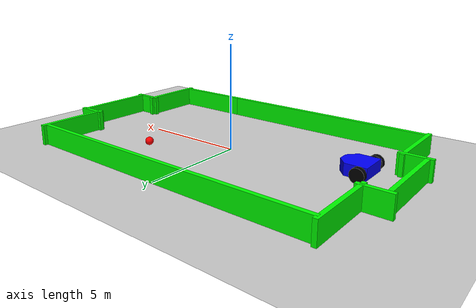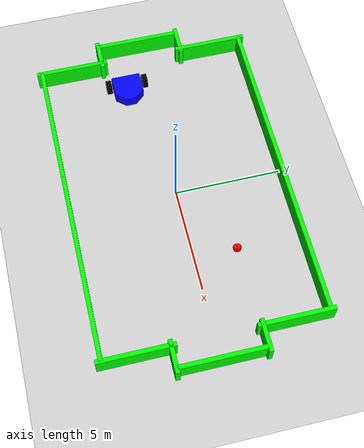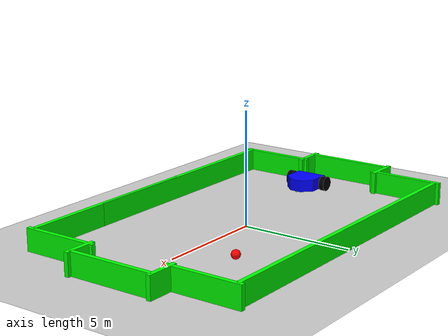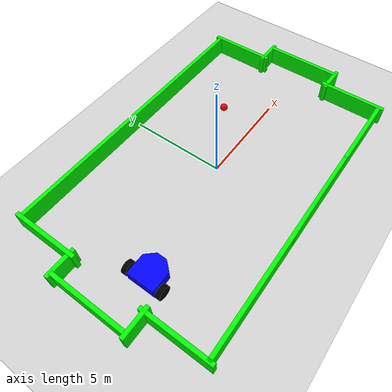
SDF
<sdf version='1.10'>
  <world name='car_world'>
    <physics name='1ms' type='ode'>
      <max_step_size>0.001</max_step_size>
      <real_time_factor>1</real_time_factor>
      <real_time_update_rate>1000</real_time_update_rate>
    </physics>
    <plugin name='gz::sim::systems::Sensors' filename='gz-sim-sensors-system'>
      <render_engine>ogre2</render_engine>
    </plugin>
    <plugin name='gz::sim::systems::Physics' filename='gz-sim-physics-system'/>
    <plugin name='gz::sim::systems::UserCommands' filename='gz-sim-user-commands-system'/>
    <plugin name='gz::sim::systems::SceneBroadcaster' filename='gz-sim-scene-broadcaster-system'/>
    <plugin name='gz::sim::systems::Imu' filename='gz-sim-imu-system'/>
    <gravity>0 0 -9.8000000000000007</gravity>
    <magnetic_field>5.5644999999999998e-06 2.2875799999999999e-05 -4.2388400000000002e-05</magnetic_field>
    <atmosphere type='adiabatic'/>
    <scene>
      <ambient>0.400000006 0.400000006 0.400000006 1</ambient>
      <background>0.699999988 0.699999988 0.699999988 1</background>
      <shadows>true</shadows>
    </scene>
    <model name='ground_plane'>
      <static>true</static>
      <link name='link'>
        <collision name='collision'>
          <geometry>
            <plane>
              <normal>0 0 1</normal>
              <size>100 100</size>
            </plane>
          </geometry>
          <surface>
            <friction>
              <ode/>
            </friction>
            <bounce/>
            <contact/>
          </surface>
        </collision>
        <visual name='visual'>
          <geometry>
            <plane>
              <normal>0 0 1</normal>
              <size>100 100</size>
            </plane>
          </geometry>
          <material>
            <ambient>0.800000012 0.800000012 0.800000012 1</ambient>
            <diffuse>0.800000012 0.800000012 0.800000012 1</diffuse>
            <specular>0.800000012 0.800000012 0.800000012 1</specular>
          </material>
        </visual>
        <pose>0 0 0 0 0 0</pose>
        <inertial>
          <pose>0 0 0 0 0 0</pose>
          <mass>1</mass>
          <inertia>
            <ixx>1</ixx>
            <ixy>0</ixy>
            <ixz>0</ixz>
            <iyy>1</iyy>
            <iyz>0</iyz>
            <izz>1</izz>
          </inertia>
        </inertial>
        <enable_wind>false</enable_wind>
      </link>
      <pose>0 0 0 0 0 0</pose>
      <self_collide>false</self_collide>
    </model>
    <model name='top_view_camera'>
      <static>true</static>
      <pose>0 0 8 3.1415926535897931 1.5707926536057681 3.1415926535897931</pose>
      <link name='camera_link'>
        <sensor name='rgb_camera' type='camera'>
          <pose>0 0 0 0 0 0</pose>
          <topic>/camera/image_raw</topic>
          <update_rate>30</update_rate>
          <enable_metrics>false</enable_metrics>
          <camera name='__default__'>
            <pose>0 0 0 0 0 0</pose>
            <horizontal_fov>1.5708</horizontal_fov>
            <image>
              <width>640</width>
              <height>480</height>
              <format>RGB_INT8</format>
              <anti_aliasing>4</anti_aliasing>
            </image>
            <camera_info_topic>__default__</camera_info_topic>
            <trigger_topic></trigger_topic>
            <triggered>false</triggered>
            <clip>
              <near>0.10000000000000001</near>
              <far>15</far>
            </clip>
            <save enabled='false'>
              <path>__default__</path>
            </save>
            <visibility_mask>4294967295</visibility_mask>
            <noise>
              <type>none</type>
              <mean>0</mean>
              <stddev>0</stddev>
            </noise>
            <distortion>
              <k1>0</k1>
              <k2>0</k2>
              <k3>0</k3>
              <p1>0</p1>
              <p2>0</p2>
              <center>0.5 0.5</center>
            </distortion>
            <lens>
              <type>stereographic</type>
              <scale_to_hfov>true</scale_to_hfov>
              <cutoff_angle>1.5707963267948966</cutoff_angle>
              <env_texture_size>256</env_texture_size>
            </lens>
            <optical_frame_id></optical_frame_id>
          </camera>
        </sensor>
        <pose>0 0 0 0 0 0</pose>
        <inertial>
          <pose>0 0 0 0 0 0</pose>
          <mass>1</mass>
          <inertia>
            <ixx>1</ixx>
            <ixy>0</ixy>
            <ixz>0</ixz>
            <iyy>1</iyy>
            <iyz>0</iyz>
            <izz>1</izz>
          </inertia>
        </inertial>
        <enable_wind>false</enable_wind>
      </link>
      <self_collide>false</self_collide>
    </model>
    <model name='target'>
      <pose>3.5 2 0.20000000000000001 0 0 0</pose>
      <link name='target_link'>
        <collision name='collision'>
          <geometry>
            <sphere>
              <radius>0.20000000000000001</radius>
            </sphere>
          </geometry>
          <surface>
            <friction>
              <ode/>
            </friction>
            <bounce/>
            <contact/>
          </surface>
        </collision>
        <visual name='visual'>
          <geometry>
            <sphere>
              <radius>0.20000000000000001</radius>
            </sphere>
          </geometry>
          <material>
            <ambient>1 0 0 1</ambient>
            <diffuse>1 0 0 1</diffuse>
            <specular>1 0 0 1</specular>
            <emissive>0.200000003 0 0 1</emissive>
          </material>
        </visual>
        <pose>0 0 0 0 0 0</pose>
        <inertial>
          <pose>0 0 0 0 0 0</pose>
          <mass>1</mass>
          <inertia>
            <ixx>1</ixx>
            <ixy>0</ixy>
            <ixz>0</ixz>
            <iyy>1</iyy>
            <iyz>0</iyz>
            <izz>1</izz>
          </inertia>
        </inertial>
        <enable_wind>false</enable_wind>
      </link>
      <static>false</static>
      <self_collide>false</self_collide>
    </model>
    <model name='labyrinth'>
      <static>true</static>
      <pose>0 0 0 0 0 0</pose>
      <link name='labyrinth_link'>
        <collision name='wall1_collision'>
          <pose>-7.5 -3.5 0.5 0 0 0</pose>
          <geometry>
            <box>
              <size>0.20000000000000001 3.5 1</size>
            </box>
          </geometry>
          <surface>
            <friction>
              <ode/>
            </friction>
            <bounce/>
            <contact/>
          </surface>
        </collision>
        <visual name='wall1_visual'>
          <pose>-7.5 -3.5 0.5 0 0 0</pose>
          <geometry>
            <box>
              <size>0.20000000000000001 3.5 1</size>
            </box>
          </geometry>
          <material>
            <ambient>0 1 0 1</ambient>
            <diffuse>0 1 0 1</diffuse>
          </material>
        </visual>

        <collision name='wall1extra_collision'>
          <pose>-7.5 3.5 0.5 0 0 0</pose>
          <geometry>
            <box>
              <size>0.20000000000000001 3.5 1</size>
            </box>
          </geometry>
          <surface>
            <friction>
              <ode/>
            </friction>
            <bounce/>
            <contact/>
          </surface>
        </collision>
        <visual name='wall1extra_visual'>
          <pose>-7.5 3.5 0.5 0 0 0</pose>
          <geometry>
            <box>
              <size>0.20000000000000001 3.5 1</size>
            </box>
          </geometry>
          <material>
            <ambient>0 1 0 1</ambient>
            <diffuse>0 1 0 1</diffuse>
          </material>
        </visual>

        <collision name='wall1extra2_collision'>
          <pose>-8.5 0 0.5 0 0 0</pose>
          <geometry>
            <box>
              <size>0.20000000000000001 4 1</size>
            </box>
          </geometry>
          <surface>
            <friction>
              <ode/>
            </friction>
            <bounce/>
            <contact/>
          </surface>
        </collision>
        <visual name='wall1extra2_visual'>
          <pose>-8.5 0 0.5 0 0 0</pose>
          <geometry>
            <box>
              <size>0.20000000000000001 4 1</size>
            </box>
          </geometry>
          <material>
            <ambient>0 1 0 1</ambient>
            <diffuse>0 1 0 1</diffuse>
          </material>
        </visual>

        <collision name='wall1extra3_collision'>
          <pose>8.5 0 0.5 0 0 0</pose>
          <geometry>
            <box>
              <size>0.20000000000000001 4 1</size>
            </box>
          </geometry>
          <surface>
            <friction>
              <ode/>
            </friction>
            <bounce/>
            <contact/>
          </surface>
        </collision>
        <visual name='wall1extra3_visual'>
          <pose>8.5 0 0.5 0 0 0</pose>
          <geometry>
            <box>
              <size>0.20000000000000001 4 1</size>
            </box>
          </geometry>
          <material>
            <ambient>0 1 0 1</ambient>
            <diffuse>0 1 0 1</diffuse>
          </material>
        </visual>

        <collision name='wall2_collision'>
          <pose>7.5 3.5 0.5 0 0 0</pose>
          <geometry>
            <box>
              <size>0.20000000000000001 3.5 1</size>
            </box>
          </geometry>
          <surface>
            <friction>
              <ode/>
            </friction>
            <bounce/>
            <contact/>
          </surface>
        </collision>
        <visual name='wall2_visual'>
          <pose>7.5 3.5 0.5 0 0 0</pose>
          <geometry>
            <box>
              <size>0.20000000000000001 3.5 1</size>
            </box>
          </geometry>
          <material>
            <ambient>0 1 0 1</ambient>
            <diffuse>0 1 0 1</diffuse>
          </material>
        </visual>
        <collision name='wall2extra_collision'>
          <pose>7.5 -3.5 0.5 0 0 0</pose>
          <geometry>
            <box>
              <size>0.20000000000000001 3.5 1</size>
            </box>
          </geometry>
          <surface>
            <friction>
              <ode/>
            </friction>
            <bounce/>
            <contact/>
          </surface>
        </collision>
        <visual name='wall2extra_visual'>
          <pose>7.5 -3.5 0.5 0 0 0</pose>
          <geometry>
            <box>
              <size>0.20000000000000001 3.5 1</size>
            </box>
          </geometry>
          <material>
            <ambient>0 1 0 1</ambient>
            <diffuse>0 1 0 1</diffuse>
          </material>
        </visual>
        <collision name='wall3_collision'>
          <pose>0 5 0.5 0 0 1.5708</pose>
          <geometry>
            <box>
              <size>0.20000000000000001 15 1</size>
            </box>
          </geometry>
          <surface>
            <friction>
              <ode/>
            </friction>
            <bounce/>
            <contact/>
          </surface>
        </collision>
        <visual name='wall3_visual'>
          <pose>0 5 0.5 0 0 1.5708</pose>
          <geometry>
            <box>
              <size>0.20000000000000001 15 1</size>
            </box>
          </geometry>
          <material>
            <ambient>0 1 0 1</ambient>
            <diffuse>0 1 0 1</diffuse>
          </material>
        </visual>
        <collision name='wall4a_collision'>
          <pose>-2 -5 0.5 0 0 1.5708</pose>
          <geometry>
            <box>
              <size>0.20000000000000001 11 1</size>
            </box>
          </geometry>
          <surface>
            <friction>
              <ode/>
            </friction>
            <bounce/>
            <contact/>
          </surface>
        </collision>
        <visual name='wall4a_visual'>
          <pose>-2 -5 0.5 0 0 1.5708</pose>
          <geometry>
            <box>
              <size>0.20000000000000001 11 1</size>
            </box>
          </geometry>
          <material>
            <ambient>0 1 0 1</ambient>
            <diffuse>0 1 0 1</diffuse>
          </material>
        </visual>

        <collision name='wall4a2_collision'>
          <pose>8 -2 0.5 0 0 1.5708</pose>
          <geometry>
            <box>
              <size>0.20000000000000001 1.5 1</size>
            </box>
          </geometry>
          <surface>
            <friction>
              <ode/>
            </friction>
            <bounce/>
            <contact/>
          </surface>
        </collision>
        <visual name='wall4a2_visual'>
          <pose>8 -2 0.5 0 0 1.5708</pose>
          <geometry>
            <box>
              <size>0.20000000000000001 1.5 1</size>
            </box>
          </geometry>
          <material>
            <ambient>0 1 0 1</ambient>
            <diffuse>0 1 0 1</diffuse>
          </material>
        </visual>

        <collision name='wall4a2b_collision'>
          <pose>8 2 0.5 0 0 1.5708</pose>
          <geometry>
            <box>
              <size>0.20000000000000001 1.5 1</size>
            </box>
          </geometry>
          <surface>
            <friction>
              <ode/>
            </friction>
            <bounce/>
            <contact/>
          </surface>
        </collision>
        <visual name='wall4a2b_visual'>
          <pose>8 2 0.5 0 0 1.5708</pose>
          <geometry>
            <box>
              <size>0.20000000000000001 1.5 1</size>
            </box>
          </geometry>
          <material>
            <ambient>0 1 0 1</ambient>
            <diffuse>0 1 0 1</diffuse>
          </material>
        </visual>

        <collision name='wall4a3_collision'>
          <pose>-8 -2 0.5 0 0 1.5708</pose>
          <geometry>
            <box>
              <size>0.20000000000000001 1.5 1</size>
            </box>
          </geometry>
          <surface>
            <friction>
              <ode/>
            </friction>
            <bounce/>
            <contact/>
          </surface>
        </collision>
        <visual name='wall4a3_visual'>
          <pose>-8 -2 0.5 0 0 1.5708</pose>
          <geometry>
            <box>
              <size>0.20000000000000001 1.5 1</size>
            </box>
          </geometry>
          <material>
            <ambient>0 1 0 1</ambient>
            <diffuse>0 1 0 1</diffuse>
          </material>
        </visual>

        <collision name='wall4a3b_collision'>
          <pose>-8 2 0.5 0 0 1.5708</pose>
          <geometry>
            <box>
              <size>0.20000000000000001 1.5 1</size>
            </box>
          </geometry>
          <surface>
            <friction>
              <ode/>
            </friction>
            <bounce/>
            <contact/>
          </surface>
        </collision>
        <visual name='wall4a3b_visual'>
          <pose>-8 2 0.5 0 0 1.5708</pose>
          <geometry>
            <box>
              <size>0.20000000000000001 1.5 1</size>
            </box>
          </geometry>
          <material>
            <ambient>0 1 0 1</ambient>
            <diffuse>0 1 0 1</diffuse>
          </material>
        </visual>

        <collision name='wall4b_collision'>
          <pose>3 -5 0.5 0 0 1.5708</pose>
          <geometry>
            <box>
              <size>0.20000000000000001 9 1</size>
            </box>
          </geometry>
          <surface>
            <friction>
              <ode/>
            </friction>
            <bounce/>
            <contact/>
          </surface>
        </collision>
        <visual name='wall4b_visual'>
          <pose>3 -5 0.5 0 0 1.5708</pose>
          <geometry>
            <box>
              <size>0.20000000000000001 9 1</size>
            </box>
          </geometry>
          <material>
            <ambient>0 1 0 1</ambient>
            <diffuse>0 1 0 1    </diffuse>
          </material>
        </visual>
        <pose>0 0 0 0 0 0</pose>
        <inertial>
          <pose>0 0 0 0 0 0</pose>
          <mass>1</mass>
          <inertia>
            <ixx>1</ixx>
            <ixy>0</ixy>
            <ixz>0</ixz>
            <iyy>1</iyy>
            <iyz>0</iyz>
            <izz>1</izz>
          </inertia>
        </inertial>
        <enable_wind>false</enable_wind>
      </link>
      <self_collide>false</self_collide>
    </model>
    <model name='vehicle_blue' canonical_link='chassis'>
      <pose>-5 0 0 0 0 0</pose>
      <link name='chassis'>
        <pose>-1 -1 0.33500000000000002 0 0 0</pose>
        <inertial>
          <mass>1.14395</mass>
          <inertia>
            <ixx>0.095328999999999997</ixx>
            <ixy>0</ixy>
            <ixz>0</ixz>
            <iyy>0.38131700000000002</iyy>
            <iyz>0</iyz>
            <izz>0.47664600000000001</izz>
          </inertia>
          <pose>0 0 0 0 0 0</pose>
        </inertial>
        <visual name='visual'>
          <pose>0.69999999999999996 0.69999999999999996 -0.26000000000000001 1.5707 -5.5511151231257827e-17 -1.5707</pose>
          <geometry>
            <mesh>
              <uri>file:///home/aldon/ros2_ws/src/my_robot/MySDF/ROBOT.STL</uri>
              <scale>0.01 0.01 0.01</scale>
            </mesh>
          </geometry>
          <material>
            <ambient>0 0 1 1</ambient>
            <diffuse>0 0 1 1</diffuse>
            <specular>0 0 1 1</specular>
          </material>
        </visual>
        <collision name='collision'>
          <pose>0.69999999999999996 0.69999999999999996 -0.26000000000000001 1.5707 -5.5511151231257827e-17 -1.5707</pose>
          <geometry>
            <mesh>
              <uri>file:///home/aldon/ros2_ws/src/my_robot/MySDF/ROBOT.STL</uri>
              <scale>0.01 0.01 0.01</scale>
            </mesh>
          </geometry>
        </collision>
        <sensor name='imu_sensor' type='imu'>
          <pose>0 0 0 0 0 0</pose>
          <topic>/imu</topic>
          <update_rate>100</update_rate>
          <enable_metrics>false</enable_metrics>
          <imu>
            <orientation_reference_frame>
              <localization>CUSTOM</localization>
              <custom_rpy>0 0 0</custom_rpy>
              <grav_dir_x>1 0 0</grav_dir_x>
            </orientation_reference_frame>
            <angular_velocity>
              <x>
                <noise type='none'>
                  <mean>0</mean>
                  <stddev>0</stddev>
                  <bias_mean>0</bias_mean>
                  <bias_stddev>0</bias_stddev>
                  <dynamic_bias_stddev>0</dynamic_bias_stddev>
                  <dynamic_bias_correlation_time>0</dynamic_bias_correlation_time>
                  <precision>0</precision>
                </noise>
              </x>
              <y>
                <noise type='none'>
                  <mean>0</mean>
                  <stddev>0</stddev>
                  <bias_mean>0</bias_mean>
                  <bias_stddev>0</bias_stddev>
                  <dynamic_bias_stddev>0</dynamic_bias_stddev>
                  <dynamic_bias_correlation_time>0</dynamic_bias_correlation_time>
                  <precision>0</precision>
                </noise>
              </y>
              <z>
                <noise type='none'>
                  <mean>0</mean>
                  <stddev>0</stddev>
                  <bias_mean>0</bias_mean>
                  <bias_stddev>0</bias_stddev>
                  <dynamic_bias_stddev>0</dynamic_bias_stddev>
                  <dynamic_bias_correlation_time>0</dynamic_bias_correlation_time>
                  <precision>0</precision>
                </noise>
              </z>
            </angular_velocity>
            <linear_acceleration>
              <x>
                <noise type='none'>
                  <mean>0</mean>
                  <stddev>0</stddev>
                  <bias_mean>0</bias_mean>
                  <bias_stddev>0</bias_stddev>
                  <dynamic_bias_stddev>0</dynamic_bias_stddev>
                  <dynamic_bias_correlation_time>0</dynamic_bias_correlation_time>
                  <precision>0</precision>
                </noise>
              </x>
              <y>
                <noise type='none'>
                  <mean>0</mean>
                  <stddev>0</stddev>
                  <bias_mean>0</bias_mean>
                  <bias_stddev>0</bias_stddev>
                  <dynamic_bias_stddev>0</dynamic_bias_stddev>
                  <dynamic_bias_correlation_time>0</dynamic_bias_correlation_time>
                  <precision>0</precision>
                </noise>
              </y>
              <z>
                <noise type='none'>
                  <mean>0</mean>
                  <stddev>0</stddev>
                  <bias_mean>0</bias_mean>
                  <bias_stddev>0</bias_stddev>
                  <dynamic_bias_stddev>0</dynamic_bias_stddev>
                  <dynamic_bias_correlation_time>0</dynamic_bias_correlation_time>
                  <precision>0</precision>
                </noise>
              </z>
            </linear_acceleration>
            <enable_orientation>true</enable_orientation>
          </imu>
        </sensor>
        <enable_wind>false</enable_wind>
      </link>
      <link name='left_wheel'>
        <pose>-1.4000000000000004 -0.10499999999999998 0.33500000000000002 1.5706999999999995 0 0</pose>
        <inertial>
          <mass>1</mass>
          <inertia>
            <ixx>0.043333000000000003</ixx>
            <ixy>0</ixy>
            <ixz>0</ixz>
            <iyy>0.043333000000000003</iyy>
            <iyz>0</iyz>
            <izz>0.080000000000000002</izz>
          </inertia>
          <pose>0 0 0 0 0 0</pose>
        </inertial>
        <visual name='visual'>
          <geometry>
            <cylinder>
              <radius>0.33500000000000002</radius>
              <length>0.25</length>
            </cylinder>
          </geometry>
          <material>
            <ambient>0 0 0 1</ambient>
            <diffuse>0 0 0 1</diffuse>
            <specular>0 0 0 1</specular>
          </material>
        </visual>
        <collision name='collision'>
          <geometry>
            <cylinder>
              <radius>0.33500000000000002</radius>
              <length>0.25</length>
            </cylinder>
          </geometry>
          <surface>
            <friction>
              <ode/>
            </friction>
            <bounce/>
            <contact/>
          </surface>
        </collision>
        <enable_wind>false</enable_wind>
      </link>
      <link name='right_wheel'>
        <pose>-1.4000000000000004 -1.895 0.33500000000000002 1.5706999999999995 0 0</pose>
        <inertial>
          <mass>1</mass>
          <inertia>
            <ixx>0.043333000000000003</ixx>
            <ixy>0</ixy>
            <ixz>0</ixz>
            <iyy>0.043333000000000003</iyy>
            <iyz>0</iyz>
            <izz>0.080000000000000002</izz>
          </inertia>
          <pose>0 0 0 0 0 0</pose>
        </inertial>
        <visual name='visual'>
          <geometry>
            <cylinder>
              <radius>0.33500000000000002</radius>
              <length>0.25</length>
            </cylinder>
          </geometry>
          <material>
            <ambient>0 0 0 1</ambient>
            <diffuse>0 0 0 1</diffuse>
            <specular>0 0 0 1</specular>
          </material>
        </visual>
        <collision name='collision'>
          <geometry>
            <cylinder>
              <radius>0.33500000000000002</radius>
              <length>0.25</length>
            </cylinder>
          </geometry>
          <surface>
            <friction>
              <ode/>
            </friction>
            <bounce/>
            <contact/>
          </surface>
        </collision>
        <enable_wind>false</enable_wind>
      </link>
      <frame name='caster_frame'>
        <pose relative_to='chassis'>0.59999999999999998 0 -0.28999999999999998 0 0 0</pose>
      </frame>
      <link name='caster'>
        <pose>-0.40000000000000036 -1 0.04500000000000004 0 0 0</pose>
        <inertial>
          <mass>1</mass>
          <inertia>
            <ixx>0.016</ixx>
            <ixy>0</ixy>
            <ixz>0</ixz>
            <iyy>0.016</iyy>
            <iyz>0</iyz>
            <izz>0.016</izz>
          </inertia>
          <pose>0 0 0 0 0 0</pose>
        </inertial>
        <visual name='visual'>
          <geometry>
            <sphere>
              <radius>0.044999999999999998</radius>
            </sphere>
          </geometry>
          <material>
            <ambient>0 1 0 1</ambient>
            <diffuse>0 1 0 1</diffuse>
            <specular>0 1 0 1</specular>
          </material>
        </visual>
        <collision name='collision'>
          <geometry>
            <sphere>
              <radius>0.20000000000000001</radius>
            </sphere>
          </geometry>
          <surface>
            <friction>
              <ode/>
            </friction>
            <bounce/>
            <contact/>
          </surface>
        </collision>
        <enable_wind>false</enable_wind>
      </link>
      <joint name='left_wheel_joint' type='revolute'>
        <pose>0 0 -6.9388939039072284e-17 0 0 0</pose>
        <parent>chassis</parent>
        <child>left_wheel</child>
        <axis>
          <xyz>0 9.6326794747692026e-05 -0.99999999536057438</xyz>
          <limit>
            <lower>-1.7976900000000001e+308</lower>
            <upper>1.7976900000000001e+308</upper>
            <effort>inf</effort>
            <velocity>inf</velocity>
            <stiffness>100000000</stiffness>
            <dissipation>1</dissipation>
          </limit>
          <dynamics>
            <spring_reference>0</spring_reference>
            <spring_stiffness>0</spring_stiffness>
            <damping>0</damping>
            <friction>0</friction>
          </dynamics>
        </axis>
      </joint>
      <joint name='right_wheel_joint' type='revolute'>
        <pose>0 4.4408920985006262e-16 6.6613381477509392e-16 0 0 0</pose>
        <parent>chassis</parent>
        <child>right_wheel</child>
        <axis>
          <xyz>0 9.6326794747692026e-05 -0.99999999536057438</xyz>
          <limit>
            <lower>-1.7976900000000001e+308</lower>
            <upper>1.7976900000000001e+308</upper>
            <effort>inf</effort>
            <velocity>inf</velocity>
            <stiffness>100000000</stiffness>
            <dissipation>1</dissipation>
          </limit>
          <dynamics>
            <spring_reference>0</spring_reference>
            <spring_stiffness>0</spring_stiffness>
            <damping>0</damping>
            <friction>0</friction>
          </dynamics>
        </axis>
      </joint>
      <joint name='caster_wheel' type='ball'>
        <parent>chassis</parent>
        <child>caster</child>
        <pose>0 0 0 0 0 0</pose>
      </joint>
      <plugin name='gz::sim::systems::DiffDrive' filename='gz-sim-diff-drive-system'>
        <left_joint>left_wheel_joint</left_joint>
        <right_joint>right_wheel_joint</right_joint>
        <wheel_separation>1.54</wheel_separation>
        <wheel_radius>0.35</wheel_radius>
        <odom_publish_frequency>1</odom_publish_frequency>
        <topic>/cmd_vel</topic>
      </plugin>
      <plugin name='gz::sim::systems::TriggeredPublisher' filename='gz-sim-triggered-publisher-system'>
        <input type='gz.msgs.Int32' topic='/keyboard/keypress'>
          <match field='data'>16777237</match>
        </input>
        <output type='gz.msgs.Twist' topic='/cmd_vel'>linear: {x: -0.5}, angular: {z: 0.0}</output>
      </plugin>
      <plugin name='gz::sim::systems::TriggeredPublisher' filename='gz-sim-triggered-publisher-system'>
        <input type='gz.msgs.Int32' topic='/keyboard/keypress'>
          <match field='data'>16777234</match>
        </input>
        <output type='gz.msgs.Twist' topic='/cmd_vel'>linear: {x: 0.0}, angular: {z: 0.5}</output>
      </plugin>
      <plugin name='gz::sim::systems::TriggeredPublisher' filename='gz-sim-triggered-publisher-system'>
        <input type='gz.msgs.Int32' topic='/keyboard/keypress'>
          <match field='data'>16777235</match>
        </input>
        <output type='gz.msgs.Twist' topic='/cmd_vel'>linear: {x: 0.5}, angular: {z: 0.0}</output>
      </plugin>
      <plugin name='gz::sim::systems::TriggeredPublisher' filename='gz-sim-triggered-publisher-system'>
        <input type='gz.msgs.Int32' topic='/keyboard/keypress'>
          <match field='data'>16777236</match>
        </input>
        <output type='gz.msgs.Twist' topic='/cmd_vel'>linear: {x: 0.0}, angular: {z: -0.5}</output>
      </plugin>
      <static>false</static>
      <self_collide>false</self_collide>
    </model>
    <light name='sun' type='directional'>
      <pose>0 0 10 0 0 0</pose>
      <cast_shadows>true</cast_shadows>
      <intensity>1</intensity>
      <direction>0 0.10000000000000001 -0.90000000000000002</direction>
      <diffuse>0.800000012 0.800000012 0.800000012 1</diffuse>
      <specular>0.200000003 0.200000003 0.200000003 1</specular>
      <attenuation>
        <range>1000</range>
        <linear>0.01</linear>
        <constant>0.90000000000000002</constant>
        <quadratic>0.001</quadratic>
      </attenuation>
      <spot>
        <inner_angle>0</inner_angle>
        <outer_angle>0</outer_angle>
        <falloff>0</falloff>
      </spot>
    </light>
  </world>
</sdf>
